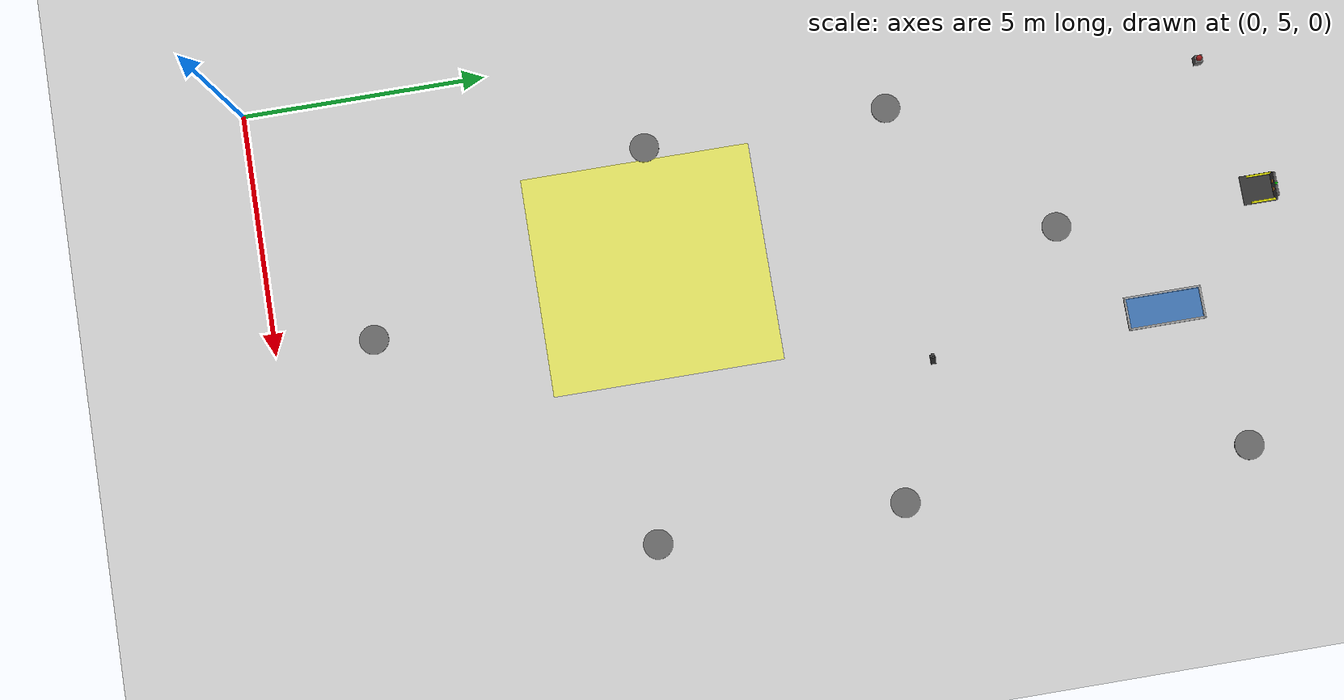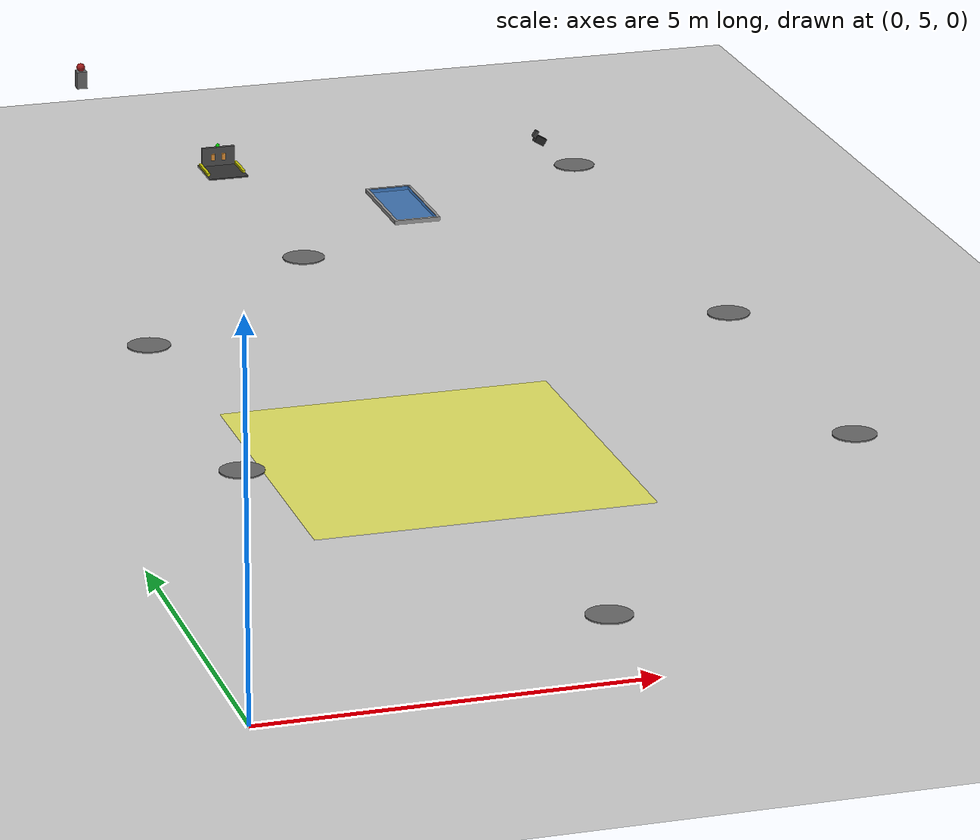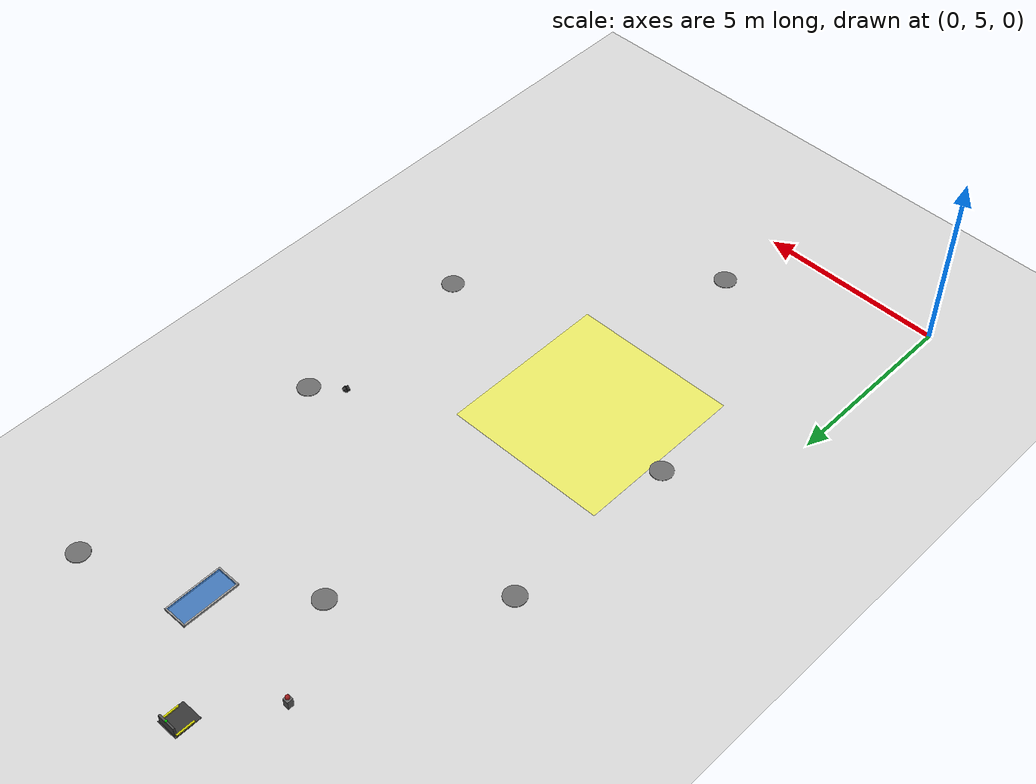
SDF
<sdf version="1.8">
 <world name="demo_world">
  <physics name="1ms" type="ignored">
   <max_step_size>0.001</max_step_size>
   <real_time_factor>1.0</real_time_factor>
  </physics>
  <model name="ground_plane">
   <static>true</static>
   <link name="link">
    <collision name="collision">
     <geometry><plane><normal>0 0 1</normal><size>250 250</size></plane></geometry>
    </collision>
    <visual name="visual">
     <geometry><plane><normal>0 0 1</normal><size>250 250</size></plane></geometry>
     <material>
      <ambient>0.8 0.8 0.8 1</ambient>
      <diffuse>0.8 0.8 0.8 1</diffuse>
      <specular>0.5 0.5 0.5 1</specular>
     </material>
    </visual>
   </link>
  </model>
  <include>
   <uri>package://syncai_demo_gz/models/water_pool</uri>
   <name>water_pool_01</name>
   <pose>7.0 22.85 0 0 0 0</pose>
  </include>
  <include>
   <uri>package://syncai_demo_gz/models/charging_station</uri>
   <name>charging_station_01</name>
   <pose>4.9 25.2 0.0 0 0 -1.57</pose>
  </include>
  <include>
   <uri>package://syncai_demo_gz/models/camera</uri>
   <name>camera_01</name>
   <pose>7.5 17.8 2.5 0 0.52 0</pose>
  </include>
  <include>
   <uri>package://syncai_demo_gz/models/alarm</uri>
   <name>alarm_01</name>
   <pose>2.5 24.0 2.0 0 0 0</pose>
  </include>
  <include>
   <uri>package://syncai_demo_gz/models/vertex</uri>
   <name>meeting_room_vertex</name>
   <pose>5.0 7.0 0.0 0 0 0</pose>
  </include>
  <include>
   <uri>package://syncai_demo_gz/models/vertex</uri>
   <name>point_01</name>
   <pose>2.0 13.0 0.0 0 0 0</pose>
  </include>
  <include>
   <uri>package://syncai_demo_gz/models/vertex</uri>
   <name>point_02</name>
   <pose>2.0 18.0 0.0 0 0 0</pose>
  </include>
  <include>
   <uri>package://syncai_demo_gz/models/vertex</uri>
   <name>point_03</name>
   <pose>5.0 21.0 0.0 0 0 0</pose>
  </include>
  <include>
   <uri>package://syncai_demo_gz/models/vertex</uri>
   <name>point_04</name>
   <pose>10.0 24.0 0.0 0 0 0</pose>
  </include>
  <include>
   <uri>package://syncai_demo_gz/models/vertex</uri>
   <name>point_05</name>
   <pose>10.0 17.0 0.0 0 0 0</pose>
  </include>
  <include>
   <uri>package://syncai_demo_gz/models/vertex</uri>
   <name>point_06</name>
   <pose>10.0 12.0 0.0 0 0 0</pose>
  </include>
  <include>
   <uri>package://syncai_demo_gz/models/speed_zone</uri>
   <name>speed_zone_01</name>
   <pose>4.5 12.75 0.0 0 0 0</pose>
  </include>
 </world>
</sdf>

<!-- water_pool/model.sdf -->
<sdf version="1.8">
  <model name="water_pool">
    <static>true</static>

    <link name="base_link">
      <!-- Water surface -->
      <visual name="water_visual">
        <pose>0 0 0.025 0 0 0</pose>
        <geometry>
          <box><size>0.6 1.5 0.05</size></box>
        </geometry>
        <material>
          <ambient>0.1 0.3 0.6 0.8</ambient>
          <diffuse>0.15 0.4 0.7 0.8</diffuse>
          <specular>0.4 0.4 0.4 1</specular>
        </material>
      </visual>

      <!-- Rim - long side 1 (+X) -->
      <visual name="rim_px">
        <pose>0.32 0 0.03 0 0 0</pose>
        <geometry>
          <box><size>0.04 1.54 0.06</size></box>
        </geometry>
        <material>
          <ambient>0.5 0.5 0.5 1</ambient>
          <diffuse>0.6 0.6 0.6 1</diffuse>
        </material>
      </visual>

      <!-- Rim - long side 2 (-X) -->
      <visual name="rim_nx">
        <pose>-0.32 0 0.03 0 0 0</pose>
        <geometry>
          <box><size>0.04 1.54 0.06</size></box>
        </geometry>
        <material>
          <ambient>0.5 0.5 0.5 1</ambient>
          <diffuse>0.6 0.6 0.6 1</diffuse>
        </material>
      </visual>

      <!-- Rim - short side 1 (+Y) -->
      <visual name="rim_py">
        <pose>0 0.77 0.03 0 0 0</pose>
        <geometry>
          <box><size>0.68 0.04 0.06</size></box>
        </geometry>
        <material>
          <ambient>0.5 0.5 0.5 1</ambient>
          <diffuse>0.6 0.6 0.6 1</diffuse>
        </material>
      </visual>

      <!-- Rim - short side 2 (-Y) -->
      <visual name="rim_ny">
        <pose>0 -0.77 0.03 0 0 0</pose>
        <geometry>
          <box><size>0.68 0.04 0.06</size></box>
        </geometry>
        <material>
          <ambient>0.5 0.5 0.5 1</ambient>
          <diffuse>0.6 0.6 0.6 1</diffuse>
        </material>
      </visual>

      <!-- Collision for the rim -->
      <collision name="rim_collision">
        <pose>0 0 0.03 0 0 0</pose>
        <geometry>
          <box><size>0.68 1.54 0.06</size></box>
        </geometry>
      </collision>
    </link>
  </model>
</sdf>

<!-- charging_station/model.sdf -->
<sdf version="1.8">
  <model name="charging_station">
    <static>true</static>

    <!-- Ground platform -->
    <link name="base_link">
      <visual name="platform_visual">
        <pose>0 0 0.01 0 0 0</pose>
        <geometry>
          <box><size>0.7 0.6 0.02</size></box>
        </geometry>
        <material>
          <ambient>0.15 0.15 0.15 1</ambient>
          <diffuse>0.2 0.2 0.2 1</diffuse>
        </material>
      </visual>
      <!-- No collision on platform so robot wheels can drive onto it -->

      <!-- Back wall / docking contact panel -->
      <visual name="back_panel_visual">
        <pose>-0.3 0 0.15 0 0 0</pose>
        <geometry>
          <box><size>0.05 0.5 0.3</size></box>
        </geometry>
        <material>
          <ambient>0.2 0.2 0.2 1</ambient>
          <diffuse>0.3 0.3 0.3 1</diffuse>
        </material>
      </visual>
      <collision name="back_panel_collision">
        <pose>-0.3 0 0.15 0 0 0</pose>
        <geometry>
          <box><size>0.05 0.5 0.3</size></box>
        </geometry>
      </collision>

      <!-- Left guide rail -->
      <visual name="left_rail_visual">
        <pose>-0.05 0.27 0.03 0 0 0</pose>
        <geometry>
          <box><size>0.5 0.04 0.06</size></box>
        </geometry>
        <material>
          <ambient>0.6 0.6 0.0 1</ambient>
          <diffuse>0.8 0.8 0.0 1</diffuse>
        </material>
      </visual>
      <!-- No collision on rails so robot can pass through -->

      <!-- Right guide rail -->
      <visual name="right_rail_visual">
        <pose>-0.05 -0.27 0.03 0 0 0</pose>
        <geometry>
          <box><size>0.5 0.04 0.06</size></box>
        </geometry>
        <material>
          <ambient>0.6 0.6 0.0 1</ambient>
          <diffuse>0.8 0.8 0.0 1</diffuse>
        </material>
      </visual>
      <!-- No collision on rails so robot can pass through -->

      <!-- Charging contact plates (on back panel, copper color) -->
      <visual name="contact_left_visual">
        <pose>-0.27 0.08 0.15 0 0 0</pose>
        <geometry>
          <box><size>0.01 0.06 0.1</size></box>
        </geometry>
        <material>
          <ambient>0.7 0.4 0.1 1</ambient>
          <diffuse>0.85 0.55 0.2 1</diffuse>
        </material>
      </visual>
      <visual name="contact_right_visual">
        <pose>-0.27 -0.08 0.15 0 0 0</pose>
        <geometry>
          <box><size>0.01 0.06 0.1</size></box>
        </geometry>
        <material>
          <ambient>0.7 0.4 0.1 1</ambient>
          <diffuse>0.85 0.55 0.2 1</diffuse>
        </material>
      </visual>

      <!-- Status indicator light -->
      <visual name="status_light_visual">
        <pose>-0.3 0 0.32 0 0 0</pose>
        <geometry>
          <sphere><radius>0.03</radius></sphere>
        </geometry>
        <material>
          <ambient>0.0 0.6 0.0 1</ambient>
          <diffuse>0.0 0.8 0.0 1</diffuse>
        </material>
      </visual>
    </link>

    <!-- Fix to world -->
    <joint name="world_fix" type="fixed">
      <parent>world</parent>
      <child>base_link</child>
    </joint>

  </model>
</sdf>

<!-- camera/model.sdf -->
<sdf version="1.8">
  <model name="camera_01">
    <static>true</static>

    <!-- Camera body -->
    <link name="camera_body">
      <visual name="body_visual">
        <geometry>
          <box><size>0.15 0.1 0.1</size></box>
        </geometry>
        <material>
          <ambient>0.1 0.1 0.1 1</ambient>
          <diffuse>0.15 0.15 0.15 1</diffuse>
        </material>
      </visual>
      <collision name="body_collision">
        <geometry>
          <box><size>0.15 0.1 0.1</size></box>
        </geometry>
      </collision>

      <sensor name="camera_sensor" type="camera">
        <topic>/camera</topic>
        <update_rate>15</update_rate>
        <camera>
          <horizontal_fov>1.39626</horizontal_fov>
          <image>
            <width>640</width>
            <height>480</height>
            <format>R8G8B8</format>
          </image>
          <clip>
            <near>0.1</near>
            <far>50.0</far>
          </clip>
        </camera>
        <always_on>1</always_on>
        <visualize>true</visualize>
      </sensor>
    </link>

    <!-- Mounting bracket -->
    <link name="mount_bracket">
      <pose>-0.1 0 0.05 0 0 0</pose>
      <visual name="bracket_visual">
        <geometry>
          <box><size>0.05 0.06 0.1</size></box>
        </geometry>
        <material>
          <ambient>0.2 0.2 0.2 1</ambient>
          <diffuse>0.25 0.25 0.25 1</diffuse>
        </material>
      </visual>
      <collision name="bracket_collision">
        <geometry>
          <box><size>0.05 0.06 0.1</size></box>
        </geometry>
      </collision>
    </link>

    <joint name="bracket_joint" type="fixed">
      <parent>camera_body</parent>
      <child>mount_bracket</child>
    </joint>
  </model>
</sdf>

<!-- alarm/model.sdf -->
<sdf version="1.8">
  <model name="alarm_01">
    <static>true</static>

    <!-- Alarm housing -->
    <link name="base_link">
      <!-- Box housing -->
      <visual name="housing_visual">
        <geometry>
          <box><size>0.15 0.15 0.25</size></box>
        </geometry>
        <material>
          <ambient>0.3 0.3 0.3 1</ambient>
          <diffuse>0.4 0.4 0.4 1</diffuse>
        </material>
      </visual>
      <collision name="housing_collision">
        <geometry>
          <box><size>0.15 0.15 0.25</size></box>
        </geometry>
      </collision>

      <!-- Lens dome on top -->
      <visual name="lens_visual">
        <pose>0 0 0.175 0 0 0</pose>
        <geometry>
          <sphere><radius>0.06</radius></sphere>
        </geometry>
        <material>
          <ambient>0.4 0.05 0.05 1</ambient>
          <diffuse>0.6 0.1 0.1 1</diffuse>
        </material>
      </visual>
    </link>

    <!-- Fix to world -->
    <joint name="frame_fix" type="fixed">
      <parent>world</parent>
      <child>base_link</child>
    </joint>

    <!-- Alarm Plugin: flashes lens_visual color between red and dark -->
    <plugin filename="AlarmPlugin" name="syncai::AlarmPlugin">
      <link_name>base_link</link_name>
      <visual_name>lens_visual</visual_name>
      <flash_period>1.0</flash_period>
      <detection_range>3.0</detection_range>
    </plugin>

  </model>
</sdf>

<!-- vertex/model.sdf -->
<sdf version="1.9">
  <model name="vertex">
    <static>true</static>

    <link name="base_link">
      <visual name="marker_visual">
        <pose>0 0 0.01 0 0 0</pose>
        <geometry>
          <cylinder>
            <radius>0.3</radius>
            <length>0.02</length>
          </cylinder>
        </geometry>
        <material>
          <ambient>0.3 0.3 0.3 1</ambient>
          <diffuse>0.4 0.4 0.4 1</diffuse>
        </material>
      </visual>
    </link>

    <plugin filename="VertexPlugin" name="syncai::VertexPlugin">
      <link_name>base_link</link_name>
      <visual_name>marker_visual</visual_name>
      <detection_range>0.5</detection_range>
    </plugin>
  </model>
</sdf>

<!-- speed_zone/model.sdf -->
<sdf version="1.8">
  <model name="speed_zone">
    <static>true</static>

    <link name="base_link">
      <visual name="zone_visual">
        <pose>0 0 0.005 0 0 0</pose>
        <geometry>
          <box><size>4.5 4.7 0.01</size></box>
        </geometry>
        <material>
          <ambient>1.0 1.0 0.0 0.5</ambient>
          <diffuse>1.0 1.0 0.0 0.5</diffuse>
          <specular>0.1 0.1 0.0 1</specular>
        </material>
      </visual>
    </link>
  </model>
</sdf>
